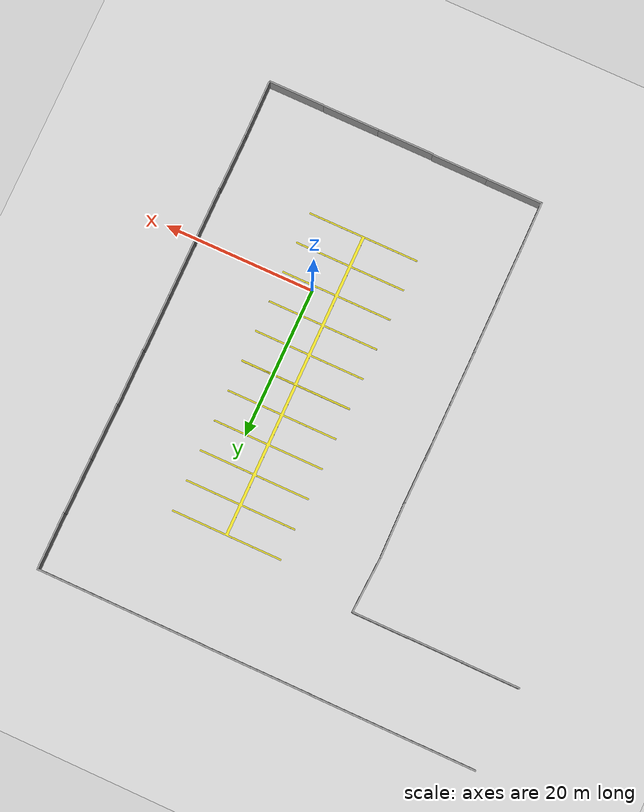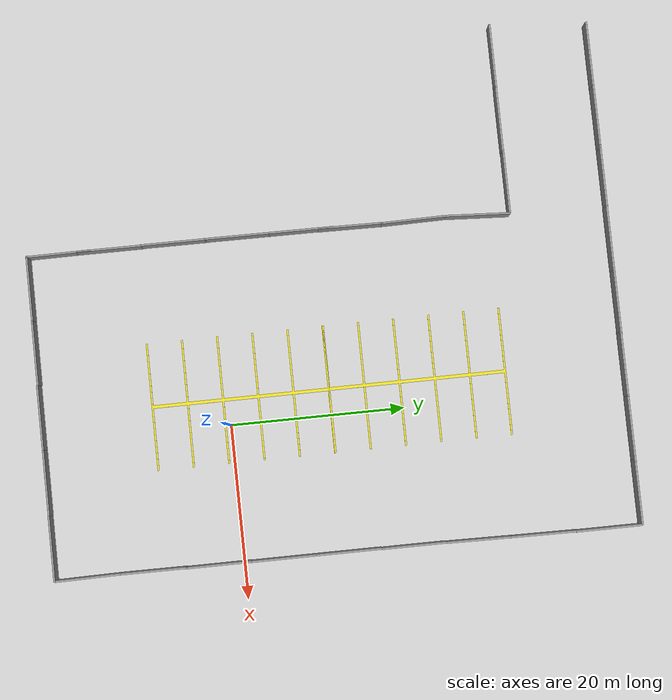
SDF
<sdf version="1.4">
 <world name="default">
  <model name="ground_plane">
   <static>1</static>
   <link name="link">
    <collision name="collision">
     <geometry><plane><normal>0 0 1</normal><size>100 100</size></plane></geometry>
     <surface><friction><ode><mu>100</mu><mu2>50</mu2></ode></friction></surface>
    </collision>
    <visual name="visual">
     <cast_shadows>0</cast_shadows>
     <geometry><plane><normal>0 0 1</normal><size>100 100</size></plane></geometry>
     <material>
      <script><uri>file://media/materials/scripts/gazebo.material</uri><name>Gazebo/Grey</name></script>
     </material>
    </visual>
    <velocity_decay><linear>0</linear><angular>0</angular></velocity_decay>
   </link>
  </model>
  <model name="grey_wall_0">
   <static>1</static>
   <link name="link">
    <pose>0 0 1.4 0 -0 0</pose>
    <collision name="collision"><geometry><box><size>7.5 0.2 2.8</size></box></geometry></collision>
    <visual name="visual">
     <cast_shadows>0</cast_shadows>
     <geometry><box><size>7.5 0.2 2.8</size></box></geometry>
     <material>
      <script>
       <uri>model://grey_wall/materials/scripts</uri>
       <uri>model://grey_wall/materials/textures</uri>
       <name>vrc/grey_wall</name>
      </script>
     </material>
    </visual>
    <velocity_decay><linear>0</linear><angular>0</angular></velocity_decay>
   </link>
   <pose>11.9495 -21.5417 0 0 -0 0</pose>
  </model>
  <model name="grey_wall_1">
   <static>1</static>
   <link name="link">
    <pose>0 0 1.4 0 -0 0</pose>
    <collision name="collision"><geometry><box><size>7.5 0.2 2.8</size></box></geometry></collision>
    <visual name="visual">
     <cast_shadows>0</cast_shadows>
     <geometry><box><size>7.5 0.2 2.8</size></box></geometry>
     <material>
      <script>
       <uri>model://grey_wall/materials/scripts</uri>
       <uri>model://grey_wall/materials/textures</uri>
       <name>vrc/grey_wall</name>
      </script>
     </material>
    </visual>
    <velocity_decay><linear>0</linear><angular>0</angular></velocity_decay>
   </link>
   <pose>4.46115 -21.5125 0 0 -0 0</pose>
  </model>
  <model name="grey_wall_2">
   <static>1</static>
   <link name="link">
    <pose>0 0 1.4 0 -0 0</pose>
    <collision name="collision"><geometry><box><size>7.5 0.2 2.8</size></box></geometry></collision>
    <visual name="visual">
     <cast_shadows>0</cast_shadows>
     <geometry><box><size>7.5 0.2 2.8</size></box></geometry>
     <material>
      <script>
       <uri>model://grey_wall/materials/scripts</uri>
       <uri>model://grey_wall/materials/textures</uri>
       <name>vrc/grey_wall</name>
      </script>
     </material>
    </visual>
    <velocity_decay><linear>0</linear><angular>0</angular></velocity_decay>
   </link>
   <pose>-3 -21.5146 0 0 -0 0</pose>
  </model>
  <model name="grey_wall_3">
   <static>1</static>
   <link name="link">
    <pose>0 0 1.4 0 -0 0</pose>
    <collision name="collision"><geometry><box><size>7.5 0.2 2.8</size></box></geometry></collision>
    <visual name="visual">
     <cast_shadows>0</cast_shadows>
     <geometry><box><size>7.5 0.2 2.8</size></box></geometry>
     <material>
      <script>
       <uri>model://grey_wall/materials/scripts</uri>
       <uri>model://grey_wall/materials/textures</uri>
       <name>vrc/grey_wall</name>
      </script>
     </material>
    </visual>
    <velocity_decay><linear>0</linear><angular>0</angular></velocity_decay>
   </link>
   <pose>-10.457 -21.4428 0 0 -0 0</pose>
  </model>
  <model name="grey_wall_4">
   <static>1</static>
   <link name="link">
    <pose>0 0 1.4 0 -0 0</pose>
    <collision name="collision"><geometry><box><size>7.5 0.2 2.8</size></box></geometry></collision>
    <visual name="visual">
     <cast_shadows>0</cast_shadows>
     <geometry><box><size>7.5 0.2 2.8</size></box></geometry>
     <material>
      <script>
       <uri>model://grey_wall/materials/scripts</uri>
       <uri>model://grey_wall/materials/textures</uri>
       <name>vrc/grey_wall</name>
      </script>
     </material>
    </visual>
    <velocity_decay><linear>0</linear><angular>0</angular></velocity_decay>
   </link>
   <pose>-17.8741 -21.4252 0 0 -0 0</pose>
  </model>
  <model name="grey_wall_6">
   <static>1</static>
   <link name="link">
    <pose>0 0 1.4 0 -0 0</pose>
    <collision name="collision"><geometry><box><size>7.5 0.2 2.8</size></box></geometry></collision>
    <visual name="visual">
     <cast_shadows>0</cast_shadows>
     <geometry><box><size>7.5 0.2 2.8</size></box></geometry>
     <material>
      <script>
       <uri>model://grey_wall/materials/scripts</uri>
       <uri>model://grey_wall/materials/textures</uri>
       <name>vrc/grey_wall</name>
      </script>
     </material>
    </visual>
    <velocity_decay><linear>0</linear><angular>0</angular></velocity_decay>
   </link>
   <pose>15.6069 -17.7328 0 0 -0 1.58364</pose>
  </model>
  <model name="grey_wall_7">
   <static>1</static>
   <link name="link">
    <pose>0 0 1.4 0 -0 0</pose>
    <collision name="collision"><geometry><box><size>7.5 0.2 2.8</size></box></geometry></collision>
    <visual name="visual">
     <cast_shadows>0</cast_shadows>
     <geometry><box><size>7.5 0.2 2.8</size></box></geometry>
     <material>
      <script>
       <uri>model://grey_wall/materials/scripts</uri>
       <uri>model://grey_wall/materials/textures</uri>
       <name>vrc/grey_wall</name>
      </script>
     </material>
    </visual>
    <velocity_decay><linear>0</linear><angular>0</angular></velocity_decay>
   </link>
   <pose>15.5792 -10.2805 0 0 0 -1.5757</pose>
  </model>
  <model name="grey_wall_8">
   <static>1</static>
   <link name="link">
    <pose>0 0 1.4 0 -0 0</pose>
    <collision name="collision"><geometry><box><size>7.5 0.2 2.8</size></box></geometry></collision>
    <visual name="visual">
     <cast_shadows>0</cast_shadows>
     <geometry><box><size>7.5 0.2 2.8</size></box></geometry>
     <material>
      <script>
       <uri>model://grey_wall/materials/scripts</uri>
       <uri>model://grey_wall/materials/textures</uri>
       <name>vrc/grey_wall</name>
      </script>
     </material>
    </visual>
    <velocity_decay><linear>0</linear><angular>0</angular></velocity_decay>
   </link>
   <pose>15.6357 -2.80636 0 0 0 -1.57048</pose>
  </model>
  <model name="grey_wall_9">
   <static>1</static>
   <link name="link">
    <pose>0 0 1.4 0 -0 0</pose>
    <collision name="collision"><geometry><box><size>7.5 0.2 2.8</size></box></geometry></collision>
    <visual name="visual">
     <cast_shadows>0</cast_shadows>
     <geometry><box><size>7.5 0.2 2.8</size></box></geometry>
     <material>
      <script>
       <uri>model://grey_wall/materials/scripts</uri>
       <uri>model://grey_wall/materials/textures</uri>
       <name>vrc/grey_wall</name>
      </script>
     </material>
    </visual>
    <velocity_decay><linear>0</linear><angular>0</angular></velocity_decay>
   </link>
   <pose>15.6626 4.62392 0 0 0 -1.57072</pose>
  </model>
  <model name="grey_wall_10">
   <static>1</static>
   <link name="link">
    <pose>0 0 1.4 0 -0 0</pose>
    <collision name="collision"><geometry><box><size>7.5 0.2 2.8</size></box></geometry></collision>
    <visual name="visual">
     <cast_shadows>0</cast_shadows>
     <geometry><box><size>7.5 0.2 2.8</size></box></geometry>
     <material>
      <script>
       <uri>model://grey_wall/materials/scripts</uri>
       <uri>model://grey_wall/materials/textures</uri>
       <name>vrc/grey_wall</name>
      </script>
     </material>
    </visual>
    <velocity_decay><linear>0</linear><angular>0</angular></velocity_decay>
   </link>
   <pose>15.665 11.9925 -0 0 0 -1.57143</pose>
  </model>
  <model name="grey_wall_11">
   <static>1</static>
   <link name="link">
    <pose>0 0 1.4 0 -0 0</pose>
    <collision name="collision"><geometry><box><size>7.5 0.2 2.8</size></box></geometry></collision>
    <visual name="visual">
     <cast_shadows>0</cast_shadows>
     <geometry><box><size>7.5 0.2 2.8</size></box></geometry>
     <material>
      <script>
       <uri>model://grey_wall/materials/scripts</uri>
       <uri>model://grey_wall/materials/textures</uri>
       <name>vrc/grey_wall</name>
      </script>
     </material>
    </visual>
    <velocity_decay><linear>0</linear><angular>0</angular></velocity_decay>
   </link>
   <pose>15.8981 34.2262 0 0 0 -1.58174</pose>
  </model>
  <model name="grey_wall_12">
   <static>1</static>
   <link name="link">
    <pose>0 0 1.4 0 -0 0</pose>
    <collision name="collision"><geometry><box><size>7.5 0.2 2.8</size></box></geometry></collision>
    <visual name="visual">
     <cast_shadows>0</cast_shadows>
     <geometry><box><size>7.5 0.2 2.8</size></box></geometry>
     <material>
      <script>
       <uri>model://grey_wall/materials/scripts</uri>
       <uri>model://grey_wall/materials/textures</uri>
       <name>vrc/grey_wall</name>
      </script>
     </material>
    </visual>
    <velocity_decay><linear>0</linear><angular>0</angular></velocity_decay>
   </link>
   <pose>15.8003 26.8897 0 0 0 -1.58522</pose>
  </model>
  <model name="grey_wall_13">
   <static>1</static>
   <link name="link">
    <pose>0 0 1.4 0 -0 0</pose>
    <collision name="collision"><geometry><box><size>7.5 0.2 2.8</size></box></geometry></collision>
    <visual name="visual">
     <cast_shadows>0</cast_shadows>
     <geometry><box><size>7.5 0.2 2.8</size></box></geometry>
     <material>
      <script>
       <uri>model://grey_wall/materials/scripts</uri>
       <uri>model://grey_wall/materials/textures</uri>
       <name>vrc/grey_wall</name>
      </script>
     </material>
    </visual>
    <velocity_decay><linear>0</linear><angular>0</angular></velocity_decay>
   </link>
   <pose>15.7093 19.4176 0 0 0 -1.57249</pose>
  </model>
  <model name="grey_wall_14">
   <static>1</static>
   <link name="link">
    <pose>0 0 1.4 0 -0 0</pose>
    <collision name="collision"><geometry><box><size>7.5 0.2 2.8</size></box></geometry></collision>
    <visual name="visual">
     <cast_shadows>0</cast_shadows>
     <geometry><box><size>7.5 0.2 2.8</size></box></geometry>
     <material>
      <script>
       <uri>model://grey_wall/materials/scripts</uri>
       <uri>model://grey_wall/materials/textures</uri>
       <name>vrc/grey_wall</name>
      </script>
     </material>
    </visual>
    <velocity_decay><linear>0</linear><angular>0</angular></velocity_decay>
   </link>
   <pose>15.9757 41.6543 0 0 0 -1.57098</pose>
  </model>
  <model name="grey_wall_15">
   <static>1</static>
   <link name="link">
    <pose>0 0 1.4 0 -0 0</pose>
    <collision name="collision"><geometry><box><size>7.5 0.2 2.8</size></box></geometry></collision>
    <visual name="visual">
     <cast_shadows>0</cast_shadows>
     <geometry><box><size>7.5 0.2 2.8</size></box></geometry>
     <material>
      <script>
       <uri>model://grey_wall/materials/scripts</uri>
       <uri>model://grey_wall/materials/textures</uri>
       <name>vrc/grey_wall</name>
      </script>
     </material>
    </visual>
    <velocity_decay><linear>0</linear><angular>0</angular></velocity_decay>
   </link>
   <pose>-21.5248 -17.7015 0 0 0 -1.56656</pose>
  </model>
  <model name="grey_wall_16">
   <static>1</static>
   <link name="link">
    <pose>0 0 1.4 0 -0 0</pose>
    <collision name="collision"><geometry><box><size>7.5 0.2 2.8</size></box></geometry></collision>
    <visual name="visual">
     <cast_shadows>0</cast_shadows>
     <geometry><box><size>7.5 0.2 2.8</size></box></geometry>
     <material>
      <script>
       <uri>model://grey_wall/materials/scripts</uri>
       <uri>model://grey_wall/materials/textures</uri>
       <name>vrc/grey_wall</name>
      </script>
     </material>
    </visual>
    <velocity_decay><linear>0</linear><angular>0</angular></velocity_decay>
   </link>
   <pose>-21.5208 -12 0 0 0 -1.57415</pose>
  </model>
  <model name="grey_wall_17">
   <static>1</static>
   <link name="link">
    <pose>0 0 1.4 0 -0 0</pose>
    <collision name="collision"><geometry><box><size>7.5 0.2 2.8</size></box></geometry></collision>
    <visual name="visual">
     <cast_shadows>0</cast_shadows>
     <geometry><box><size>7.5 0.2 2.8</size></box></geometry>
     <material>
      <script>
       <uri>model://grey_wall/materials/scripts</uri>
       <uri>model://grey_wall/materials/textures</uri>
       <name>vrc/grey_wall</name>
      </script>
     </material>
    </visual>
    <velocity_decay><linear>0</linear><angular>0</angular></velocity_decay>
   </link>
   <pose>-21.5209 -4.59777 0 0 0 -1.57509</pose>
  </model>
  <model name="grey_wall_18">
   <static>1</static>
   <link name="link">
    <pose>0 0 1.4 0 -0 0</pose>
    <collision name="collision"><geometry><box><size>7.5 0.2 2.8</size></box></geometry></collision>
    <visual name="visual">
     <cast_shadows>0</cast_shadows>
     <geometry><box><size>7.5 0.2 2.8</size></box></geometry>
     <material>
      <script>
       <uri>model://grey_wall/materials/scripts</uri>
       <uri>model://grey_wall/materials/textures</uri>
       <name>vrc/grey_wall</name>
      </script>
     </material>
    </visual>
    <velocity_decay><linear>0</linear><angular>0</angular></velocity_decay>
   </link>
   <pose>-21.497 2.74679 0 0 0 -1.57722</pose>
  </model>
  <model name="grey_wall_19">
   <static>1</static>
   <link name="link">
    <pose>0 0 1.4 0 -0 0</pose>
    <collision name="collision"><geometry><box><size>7.5 0.2 2.8</size></box></geometry></collision>
    <visual name="visual">
     <cast_shadows>0</cast_shadows>
     <geometry><box><size>7.5 0.2 2.8</size></box></geometry>
     <material>
      <script>
       <uri>model://grey_wall/materials/scripts</uri>
       <uri>model://grey_wall/materials/textures</uri>
       <name>vrc/grey_wall</name>
      </script>
     </material>
    </visual>
    <velocity_decay><linear>0</linear><angular>0</angular></velocity_decay>
   </link>
   <pose>-21.452 10.0969 0 0 0 -1.57666</pose>
  </model>
  <model name="grey_wall_20">
   <static>1</static>
   <link name="link">
    <pose>0 0 1.4 0 -0 0</pose>
    <collision name="collision"><geometry><box><size>7.5 0.2 2.8</size></box></geometry></collision>
    <visual name="visual">
     <cast_shadows>0</cast_shadows>
     <geometry><box><size>7.5 0.2 2.8</size></box></geometry>
     <material>
      <script>
       <uri>model://grey_wall/materials/scripts</uri>
       <uri>model://grey_wall/materials/textures</uri>
       <name>vrc/grey_wall</name>
      </script>
     </material>
    </visual>
    <velocity_decay><linear>0</linear><angular>0</angular></velocity_decay>
   </link>
   <pose>-31.1365 45.5106 0 0 -0 0</pose>
  </model>
  <model name="grey_wall_21">
   <static>1</static>
   <link name="link">
    <pose>0 0 1.4 0 -0 0</pose>
    <collision name="collision"><geometry><box><size>7.5 0.2 2.8</size></box></geometry></collision>
    <visual name="visual">
     <cast_shadows>0</cast_shadows>
     <geometry><box><size>7.5 0.2 2.8</size></box></geometry>
     <material>
      <script>
       <uri>model://grey_wall/materials/scripts</uri>
       <uri>model://grey_wall/materials/textures</uri>
       <name>vrc/grey_wall</name>
      </script>
     </material>
    </visual>
    <velocity_decay><linear>0</linear><angular>0</angular></velocity_decay>
   </link>
   <pose>-24.0972 45.5131 0 0 -0 0</pose>
  </model>
  <model name="grey_wall_22">
   <static>1</static>
   <link name="link">
    <pose>0 0 1.4 0 -0 0</pose>
    <collision name="collision"><geometry><box><size>7.5 0.2 2.8</size></box></geometry></collision>
    <visual name="visual">
     <cast_shadows>0</cast_shadows>
     <geometry><box><size>7.5 0.2 2.8</size></box></geometry>
     <material>
      <script>
       <uri>model://grey_wall/materials/scripts</uri>
       <uri>model://grey_wall/materials/textures</uri>
       <name>vrc/grey_wall</name>
      </script>
     </material>
    </visual>
    <velocity_decay><linear>0</linear><angular>0</angular></velocity_decay>
   </link>
   <pose>-16.9789 45.491 0 0 -0 0</pose>
  </model>
  <model name="grey_wall_23">
   <static>1</static>
   <link name="link">
    <pose>0 0 1.4 0 -0 0</pose>
    <collision name="collision"><geometry><box><size>7.5 0.2 2.8</size></box></geometry></collision>
    <visual name="visual">
     <cast_shadows>0</cast_shadows>
     <geometry><box><size>7.5 0.2 2.8</size></box></geometry>
     <material>
      <script>
       <uri>model://grey_wall/materials/scripts</uri>
       <uri>model://grey_wall/materials/textures</uri>
       <name>vrc/grey_wall</name>
      </script>
     </material>
    </visual>
    <velocity_decay><linear>0</linear><angular>0</angular></velocity_decay>
   </link>
   <pose>-9.61692 45.4978 0 0 -0 0</pose>
  </model>
  <model name="grey_wall_24">
   <static>1</static>
   <link name="link">
    <pose>0 0 1.4 0 -0 0</pose>
    <collision name="collision"><geometry><box><size>7.5 0.2 2.8</size></box></geometry></collision>
    <visual name="visual">
     <cast_shadows>0</cast_shadows>
     <geometry><box><size>7.5 0.2 2.8</size></box></geometry>
     <material>
      <script>
       <uri>model://grey_wall/materials/scripts</uri>
       <uri>model://grey_wall/materials/textures</uri>
       <name>vrc/grey_wall</name>
      </script>
     </material>
    </visual>
    <velocity_decay><linear>0</linear><angular>0</angular></velocity_decay>
   </link>
   <pose>-2.36117 45.4782 0 0 -0 0</pose>
  </model>
  <model name="grey_wall_25">
   <static>1</static>
   <link name="link">
    <pose>0 0 1.4 0 -0 0</pose>
    <collision name="collision"><geometry><box><size>7.5 0.2 2.8</size></box></geometry></collision>
    <visual name="visual">
     <cast_shadows>0</cast_shadows>
     <geometry><box><size>7.5 0.2 2.8</size></box></geometry>
     <material>
      <script>
       <uri>model://grey_wall/materials/scripts</uri>
       <uri>model://grey_wall/materials/textures</uri>
       <name>vrc/grey_wall</name>
      </script>
     </material>
    </visual>
    <velocity_decay><linear>0</linear><angular>0</angular></velocity_decay>
   </link>
   <pose>5.03291 45.474 0 0 -0 0</pose>
  </model>
  <model name="grey_wall_26">
   <static>1</static>
   <link name="link">
    <pose>0 0 1.4 0 -0 0</pose>
    <collision name="collision"><geometry><box><size>7.5 0.2 2.8</size></box></geometry></collision>
    <visual name="visual">
     <cast_shadows>0</cast_shadows>
     <geometry><box><size>7.5 0.2 2.8</size></box></geometry>
     <material>
      <script>
       <uri>model://grey_wall/materials/scripts</uri>
       <uri>model://grey_wall/materials/textures</uri>
       <name>vrc/grey_wall</name>
      </script>
     </material>
    </visual>
    <velocity_decay><linear>0</linear><angular>0</angular></velocity_decay>
   </link>
   <pose>12.2917 45.4674 0 0 -0 0</pose>
  </model>
  <model name="grey_wall_27">
   <static>1</static>
   <link name="link">
    <pose>0 0 1.4 0 -0 0</pose>
    <collision name="collision"><geometry><box><size>7.5 0.2 2.8</size></box></geometry></collision>
    <visual name="visual">
     <cast_shadows>0</cast_shadows>
     <geometry><box><size>7.5 0.2 2.8</size></box></geometry>
     <material>
      <script>
       <uri>model://grey_wall/materials/scripts</uri>
       <uri>model://grey_wall/materials/textures</uri>
       <name>vrc/grey_wall</name>
      </script>
     </material>
    </visual>
    <velocity_decay><linear>0</linear><angular>0</angular></velocity_decay>
   </link>
   <pose>-21.3576 15.9306 5e-06 0.00456 2e-06 -1.58472</pose>
  </model>
  <model name="grey_wall_28">
   <static>1</static>
   <link name="link">
    <pose>0 0 1.4 0 -0 0</pose>
    <collision name="collision"><geometry><box><size>7.5 0.2 2.8</size></box></geometry></collision>
    <visual name="visual">
     <cast_shadows>0</cast_shadows>
     <geometry><box><size>7.5 0.2 2.8</size></box></geometry>
     <material>
      <script>
       <uri>model://grey_wall/materials/scripts</uri>
       <uri>model://grey_wall/materials/textures</uri>
       <name>vrc/grey_wall</name>
      </script>
     </material>
    </visual>
    <velocity_decay><linear>0</linear><angular>0</angular></velocity_decay>
   </link>
   <pose>-21.3437 23.2399 0 0 0 -1.55853</pose>
  </model>
  <model name="grey_wall_29">
   <static>1</static>
   <link name="link">
    <pose>0 0 1.4 0 -0 0</pose>
    <collision name="collision"><geometry><box><size>7.5 0.2 2.8</size></box></geometry></collision>
    <visual name="visual">
     <cast_shadows>0</cast_shadows>
     <geometry><box><size>7.5 0.2 2.8</size></box></geometry>
     <material>
      <script>
       <uri>model://grey_wall/materials/scripts</uri>
       <uri>model://grey_wall/materials/textures</uri>
       <name>vrc/grey_wall</name>
      </script>
     </material>
    </visual>
    <velocity_decay><linear>0</linear><angular>0</angular></velocity_decay>
   </link>
   <pose>-21.1799 30.6302 0 0 -0 1.51593</pose>
  </model>
  <model name="grey_wall_30">
   <static>1</static>
   <link name="link">
    <pose>0 0 1.4 0 -0 0</pose>
    <collision name="collision"><geometry><box><size>7.5 0.2 2.8</size></box></geometry></collision>
    <visual name="visual">
     <cast_shadows>0</cast_shadows>
     <geometry><box><size>7.5 0.2 2.8</size></box></geometry>
     <material>
      <script>
       <uri>model://grey_wall/materials/scripts</uri>
       <uri>model://grey_wall/materials/textures</uri>
       <name>vrc/grey_wall</name>
      </script>
     </material>
    </visual>
    <velocity_decay><linear>0</linear><angular>0</angular></velocity_decay>
   </link>
   <pose>-39.3552 34.3146 0 0 -0 0</pose>
  </model>
  <model name="grey_wall_31">
   <static>1</static>
   <link name="link">
    <pose>0 0 1.4 0 -0 0</pose>
    <collision name="collision"><geometry><box><size>7.5 0.2 2.8</size></box></geometry></collision>
    <visual name="visual">
     <cast_shadows>0</cast_shadows>
     <geometry><box><size>7.5 0.2 2.8</size></box></geometry>
     <material>
      <script>
       <uri>model://grey_wall/materials/scripts</uri>
       <uri>model://grey_wall/materials/textures</uri>
       <name>vrc/grey_wall</name>
      </script>
     </material>
    </visual>
    <velocity_decay><linear>0</linear><angular>0</angular></velocity_decay>
   </link>
   <pose>-31.9612 34.2947 0 0 -0 0</pose>
  </model>
  <model name="grey_wall_32">
   <static>1</static>
   <link name="link">
    <pose>0 0 1.4 0 -0 0</pose>
    <collision name="collision"><geometry><box><size>7.5 0.2 2.8</size></box></geometry></collision>
    <visual name="visual">
     <cast_shadows>0</cast_shadows>
     <geometry><box><size>7.5 0.2 2.8</size></box></geometry>
     <material>
      <script>
       <uri>model://grey_wall/materials/scripts</uri>
       <uri>model://grey_wall/materials/textures</uri>
       <name>vrc/grey_wall</name>
      </script>
     </material>
    </visual>
    <velocity_decay><linear>0</linear><angular>0</angular></velocity_decay>
   </link>
   <pose>-24.72 34.324 0 0 -0 0</pose>
  </model>
  <model name="grey_wall_33">
   <static>1</static>
   <link name="link">
    <pose>0 0 1.4 0 -0 0</pose>
    <collision name="collision"><geometry><box><size>7.5 0.2 2.8</size></box></geometry></collision>
    <visual name="visual">
     <cast_shadows>0</cast_shadows>
     <geometry><box><size>7.5 0.2 2.8</size></box></geometry>
     <material>
      <script>
       <uri>model://grey_wall/materials/scripts</uri>
       <uri>model://grey_wall/materials/textures</uri>
       <name>vrc/grey_wall</name>
      </script>
     </material>
    </visual>
    <velocity_decay><linear>0</linear><angular>0</angular></velocity_decay>
   </link>
   <pose>-38.5263 45.4975 0 0 -0 0</pose>
  </model>
  <model name="Parking Lot 2">
   <static>1</static>
   <link name="link">
    <inertial>
     <mass>1</mass>
     <inertia><ixx>1</ixx><iyy>1</iyy><izz>1</izz><ixy>0</ixy><ixz>0</ixz><iyz>0</iyz></inertia>
    </inertial>
    <collision name="collision">
     <geometry><mesh><uri>model://parking_lot_2/meshes/parking_lot_2.dae</uri></mesh></geometry>
    </collision>
    <visual name="visual">
     <material>
      <script><uri>file://media/materials/scripts/gazebo.material</uri><name>Gazebo/YellowGlow</name></script>
     </material>
     <geometry>
      <mesh><uri>model://parking_lot_2/meshes/parking_lot_2.dae</uri><scale>0.0012 0.0013 0.002</scale></mesh>
     </geometry>
    </visual>
    <velocity_decay><linear>0</linear><angular>0</angular></velocity_decay>
   </link>
   <pose>-10.3999 -9.00105 0 0 -0 0</pose>
  </model>
  <model name="Parking Lot 2_0">
   <static>1</static>
   <link name="link">
    <inertial>
     <mass>1</mass>
     <inertia><ixx>1</ixx><iyy>1</iyy><izz>1</izz><ixy>0</ixy><ixz>0</ixz><iyz>0</iyz></inertia>
    </inertial>
    <collision name="collision">
     <geometry><mesh><uri>model://parking_lot_2/meshes/parking_lot_2.dae</uri></mesh></geometry>
    </collision>
    <visual name="visual">
     <material>
      <script><uri>file://media/materials/scripts/gazebo.material</uri><name>Gazebo/YellowGlow</name></script>
     </material>
     <geometry>
      <mesh><uri>model://parking_lot_2/meshes/parking_lot_2.dae</uri><scale>0.0012 0.0013 0.002</scale></mesh>
     </geometry>
    </visual>
    <velocity_decay><linear>0</linear><angular>0</angular></velocity_decay>
   </link>
   <pose>-10.4293 11.509 0 0 -0 0</pose>
  </model>
 </world>
</sdf>
